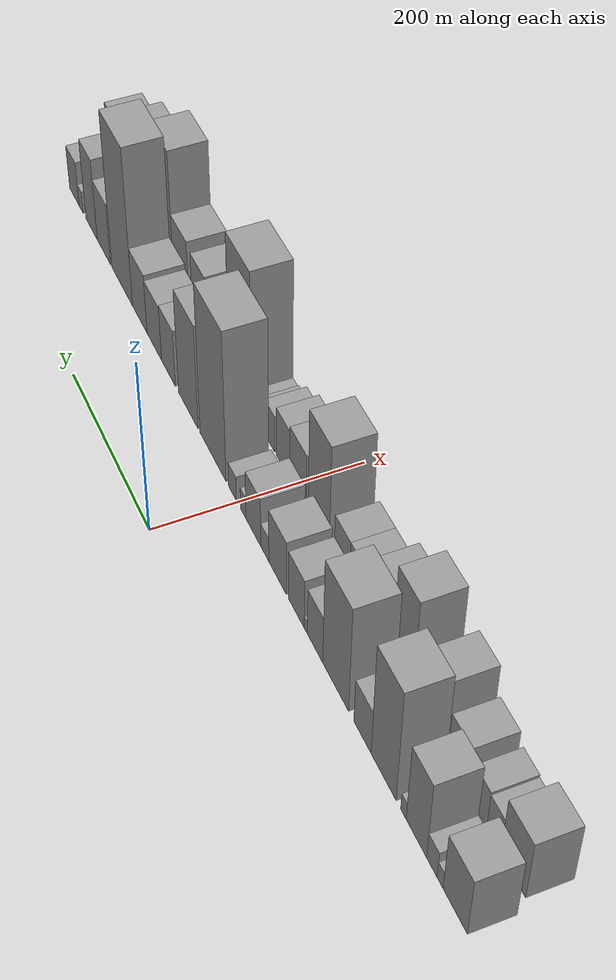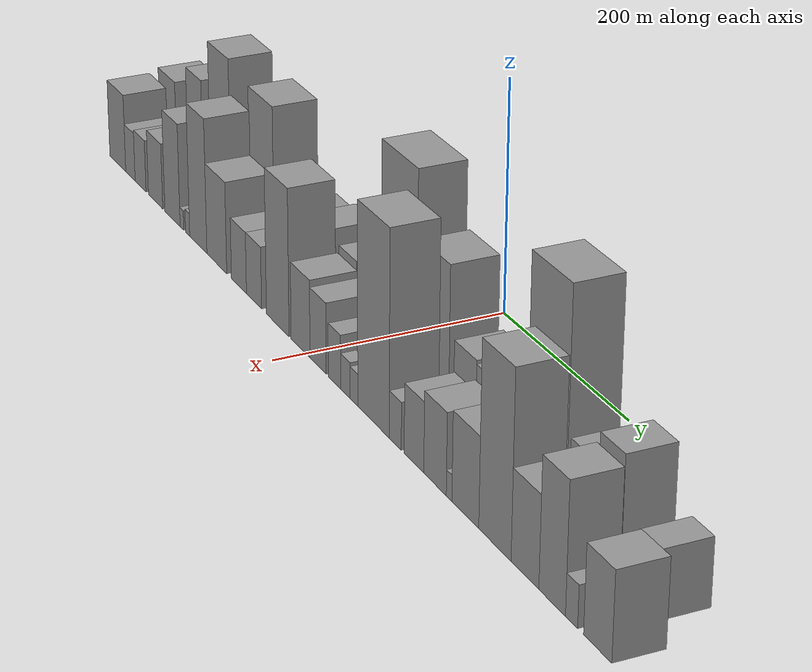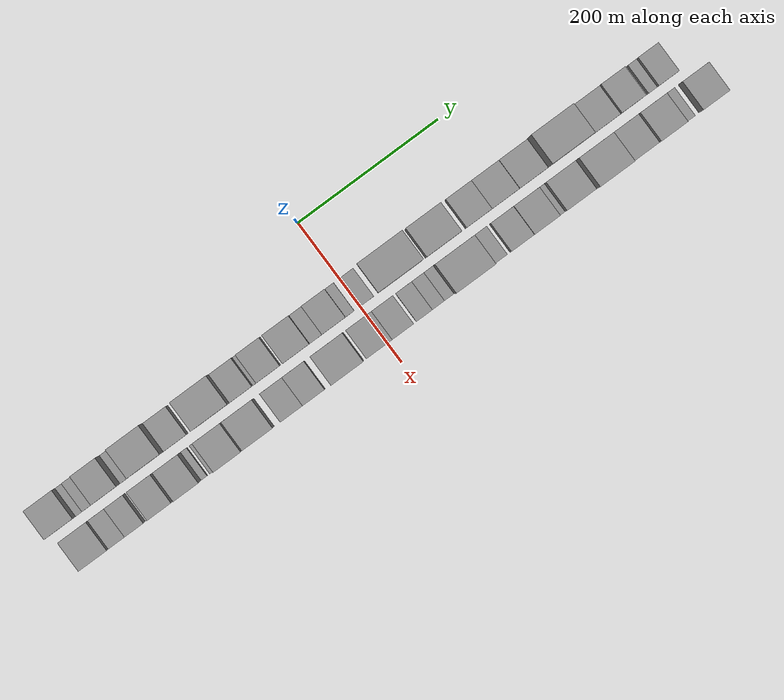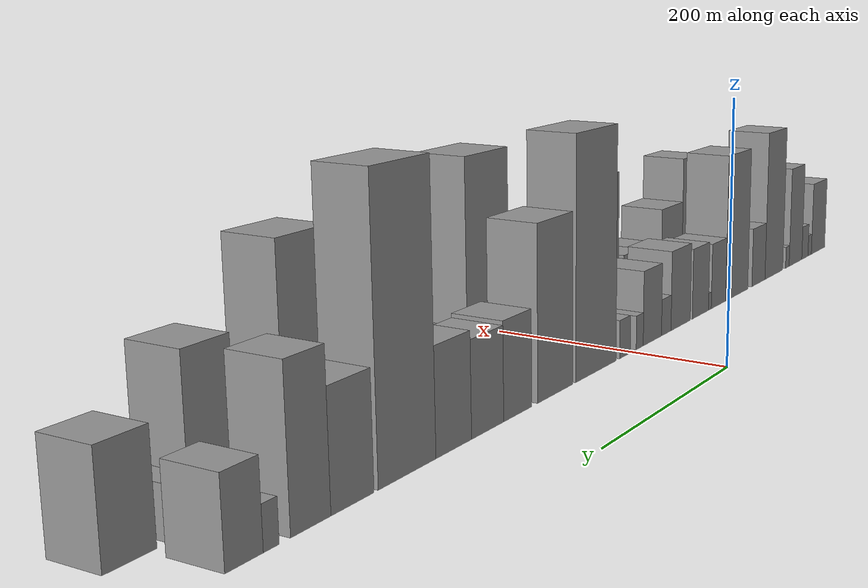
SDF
<sdf version="1.6">
 <world name="default">
  <scene>
   <sky><clouds><speed>12</speed></clouds></sky>
   <ambient>0.4 0.4 0.4 1</ambient>
   <background>0.7 0.7 0.7 1</background>
   <shadows>1</shadows>
  </scene>
  <gravity>0 0 -9.8066</gravity>
  <magnetic_field>6e-06 2.3e-05 -4.2e-05</magnetic_field>
  <physics default="0" name="default_physics" type="ode">
   <ode>
    <solver>
     <type>quick</type>
     <iters>10</iters>
     <sor>1.0</sor>
     <use_dynamic_moi_rescaling>0</use_dynamic_moi_rescaling>
    </solver>
    <constraints>
     <cfm>0</cfm>
     <erp>0.2</erp>
     <contact_max_correcting_vel>100</contact_max_correcting_vel>
     <contact_surface_layer>0.001</contact_surface_layer>
    </constraints>
   </ode>
   <max_step_size>0.004</max_step_size>
   <real_time_factor>1</real_time_factor>
   <real_time_update_rate>250</real_time_update_rate>
  </physics>
  <light name="sun" type="directional">
   <pose>0 0 10 0 0 0</pose>
   <diffuse>0.8 0.8 0.8 1</diffuse>
   <specular>0.2 0.2 0.2 1</specular>
   <attenuation>
    <range>1000</range>
    <constant>0.9</constant>
    <linear>0.01</linear>
    <quadratic>0.001</quadratic>
   </attenuation>
   <direction>-0.5 0.1 -0.9</direction>
  </light>
  <model name="building_1">
   <static>1</static>
   <pose>100.0000 -423.9543 0 0.000000 0.000000 0.000000</pose>
   <link name="link">
    <pose>0 0 36.00 0 0 0</pose>
    <collision name="collision"><geometry><box><size>40.0000 40.0915 72.0000</size></box></geometry></collision>
    <visual name="visual">
     <cast_shadows>0</cast_shadows>
     <geometry><box><size>40.0000 40.0915 72.0000</size></box></geometry>
     <material>
      <script>
       <uri>model://grey_wall/materials/scripts</uri>
       <uri>model://grey_wall/materials/textures</uri>
       <name>vrc/grey_wall</name>
      </script>
     </material>
    </visual>
   </link>
  </model>
  <model name="building_2">
   <static>1</static>
   <pose>100.0000 -398.9408 0 0.000000 0.000000 0.000000</pose>
   <link name="link">
    <pose>0 0 10.50 0 0 0</pose>
    <collision name="collision"><geometry><box><size>40.0000 9.9356 21.0000</size></box></geometry></collision>
    <visual name="visual">
     <cast_shadows>0</cast_shadows>
     <geometry><box><size>40.0000 9.9356 21.0000</size></box></geometry>
     <material>
      <script>
       <uri>model://grey_wall/materials/scripts</uri>
       <uri>model://grey_wall/materials/textures</uri>
       <name>vrc/grey_wall</name>
      </script>
     </material>
    </visual>
   </link>
  </model>
  <model name="building_3">
   <static>1</static>
   <pose>100.0000 -385.1094 0 0.000000 0.000000 0.000000</pose>
   <link name="link">
    <pose>0 0 16.50 0 0 0</pose>
    <collision name="collision"><geometry><box><size>40.0000 17.7272 33.0000</size></box></geometry></collision>
    <visual name="visual">
     <cast_shadows>0</cast_shadows>
     <geometry><box><size>40.0000 17.7272 33.0000</size></box></geometry>
     <material>
      <script>
       <uri>model://grey_wall/materials/scripts</uri>
       <uri>model://grey_wall/materials/textures</uri>
       <name>vrc/grey_wall</name>
      </script>
     </material>
    </visual>
   </link>
  </model>
  <model name="building_4">
   <static>1</static>
   <pose>100.0000 -358.5378 0 0.000000 0.000000 0.000000</pose>
   <link name="link">
    <pose>0 0 48.00 0 0 0</pose>
    <collision name="collision"><geometry><box><size>40.0000 35.4161 96.0000</size></box></geometry></collision>
    <visual name="visual">
     <cast_shadows>0</cast_shadows>
     <geometry><box><size>40.0000 35.4161 96.0000</size></box></geometry>
     <material>
      <script>
       <uri>model://grey_wall/materials/scripts</uri>
       <uri>model://grey_wall/materials/textures</uri>
       <name>vrc/grey_wall</name>
      </script>
     </material>
    </visual>
   </link>
  </model>
  <model name="building_5">
   <static>1</static>
   <pose>100.0000 -335.9532 0 0.000000 0.000000 0.000000</pose>
   <link name="link">
    <pose>0 0 10.50 0 0 0</pose>
    <collision name="collision"><geometry><box><size>40.0000 9.7530 21.0000</size></box></geometry></collision>
    <visual name="visual">
     <cast_shadows>0</cast_shadows>
     <geometry><box><size>40.0000 9.7530 21.0000</size></box></geometry>
     <material>
      <script>
       <uri>model://grey_wall/materials/scripts</uri>
       <uri>model://grey_wall/materials/textures</uri>
       <name>vrc/grey_wall</name>
      </script>
     </material>
    </visual>
   </link>
  </model>
  <model name="building_6">
   <static>1</static>
   <pose>100.0000 -300.1363 0 0.000000 0.000000 0.000000</pose>
   <link name="link">
    <pose>0 0 69.00 0 0 0</pose>
    <collision name="collision"><geometry><box><size>40.0000 45.8809 138.0000</size></box></geometry></collision>
    <visual name="visual">
     <cast_shadows>0</cast_shadows>
     <geometry><box><size>40.0000 45.8809 138.0000</size></box></geometry>
     <material>
      <script>
       <uri>model://grey_wall/materials/scripts</uri>
       <uri>model://grey_wall/materials/textures</uri>
       <name>vrc/grey_wall</name>
      </script>
     </material>
    </visual>
   </link>
  </model>
  <model name="building_7">
   <static>1</static>
   <pose>100.0000 -261.0096 0 0.000000 0.000000 0.000000</pose>
   <link name="link">
    <pose>0 0 27.00 0 0 0</pose>
    <collision name="collision"><geometry><box><size>40.0000 32.3724 54.0000</size></box></geometry></collision>
    <visual name="visual">
     <cast_shadows>0</cast_shadows>
     <geometry><box><size>40.0000 32.3724 54.0000</size></box></geometry>
     <material>
      <script>
       <uri>model://grey_wall/materials/scripts</uri>
       <uri>model://grey_wall/materials/textures</uri>
       <name>vrc/grey_wall</name>
      </script>
     </material>
    </visual>
   </link>
  </model>
  <model name="building_8">
   <static>1</static>
   <pose>100.0000 -209.3843 0 0.000000 0.000000 0.000000</pose>
   <link name="link">
    <pose>0 0 64.50 0 0 0</pose>
    <collision name="collision"><geometry><box><size>40.0000 50.8782 129.0000</size></box></geometry></collision>
    <visual name="visual">
     <cast_shadows>0</cast_shadows>
     <geometry><box><size>40.0000 50.8782 129.0000</size></box></geometry>
     <material>
      <script>
       <uri>model://grey_wall/materials/scripts</uri>
       <uri>model://grey_wall/materials/textures</uri>
       <name>vrc/grey_wall</name>
      </script>
     </material>
    </visual>
   </link>
  </model>
  <model name="building_9">
   <static>1</static>
   <pose>100.0000 -168.1721 0 0.000000 0.000000 0.000000</pose>
   <link name="link">
    <pose>0 0 28.50 0 0 0</pose>
    <collision name="collision"><geometry><box><size>40.0000 31.5462 57.0000</size></box></geometry></collision>
    <visual name="visual">
     <cast_shadows>0</cast_shadows>
     <geometry><box><size>40.0000 31.5462 57.0000</size></box></geometry>
     <material>
      <script>
       <uri>model://grey_wall/materials/scripts</uri>
       <uri>model://grey_wall/materials/textures</uri>
       <name>vrc/grey_wall</name>
      </script>
     </material>
    </visual>
   </link>
  </model>
  <model name="building_10">
   <static>1</static>
   <pose>100.0000 -149.3820 0 0.000000 0.000000 0.000000</pose>
   <link name="link">
    <pose>0 0 7.50 0 0 0</pose>
    <collision name="collision"><geometry><box><size>40.0000 6.0340 15.0000</size></box></geometry></collision>
    <visual name="visual">
     <cast_shadows>0</cast_shadows>
     <geometry><box><size>40.0000 6.0340 15.0000</size></box></geometry>
     <material>
      <script>
       <uri>model://grey_wall/materials/scripts</uri>
       <uri>model://grey_wall/materials/textures</uri>
       <name>vrc/grey_wall</name>
      </script>
     </material>
    </visual>
   </link>
  </model>
  <model name="building_11">
   <static>1</static>
   <pose>100.0000 -129.6359 0 0.000000 0.000000 0.000000</pose>
   <link name="link">
    <pose>0 0 30.00 0 0 0</pose>
    <collision name="collision"><geometry><box><size>40.0000 33.4581 60.0000</size></box></geometry></collision>
    <visual name="visual">
     <cast_shadows>0</cast_shadows>
     <geometry><box><size>40.0000 33.4581 60.0000</size></box></geometry>
     <material>
      <script>
       <uri>model://grey_wall/materials/scripts</uri>
       <uri>model://grey_wall/materials/textures</uri>
       <name>vrc/grey_wall</name>
      </script>
     </material>
    </visual>
   </link>
  </model>
  <model name="building_12">
   <static>1</static>
   <pose>100.0000 -90.0533 0 0.000000 0.000000 0.000000</pose>
   <link name="link">
    <pose>0 0 33.00 0 0 0</pose>
    <collision name="collision"><geometry><box><size>40.0000 37.7072 66.0000</size></box></geometry></collision>
    <visual name="visual">
     <cast_shadows>0</cast_shadows>
     <geometry><box><size>40.0000 37.7072 66.0000</size></box></geometry>
     <material>
      <script>
       <uri>model://grey_wall/materials/scripts</uri>
       <uri>model://grey_wall/materials/textures</uri>
       <name>vrc/grey_wall</name>
      </script>
     </material>
    </visual>
   </link>
  </model>
  <model name="building_13">
   <static>1</static>
   <pose>100.0000 -62.3040 0 0.000000 0.000000 0.000000</pose>
   <link name="link">
    <pose>0 0 15.00 0 0 0</pose>
    <collision name="collision"><geometry><box><size>40.0000 17.7913 30.0000</size></box></geometry></collision>
    <visual name="visual">
     <cast_shadows>0</cast_shadows>
     <geometry><box><size>40.0000 17.7913 30.0000</size></box></geometry>
     <material>
      <script>
       <uri>model://grey_wall/materials/scripts</uri>
       <uri>model://grey_wall/materials/textures</uri>
       <name>vrc/grey_wall</name>
      </script>
     </material>
    </visual>
   </link>
  </model>
  <model name="building_14">
   <static>1</static>
   <pose>100.0000 -36.8369 0 0.000000 0.000000 0.000000</pose>
   <link name="link">
    <pose>0 0 30.00 0 0 0</pose>
    <collision name="collision"><geometry><box><size>40.0000 33.1428 60.0000</size></box></geometry></collision>
    <visual name="visual">
     <cast_shadows>0</cast_shadows>
     <geometry><box><size>40.0000 33.1428 60.0000</size></box></geometry>
     <material>
      <script>
       <uri>model://grey_wall/materials/scripts</uri>
       <uri>model://grey_wall/materials/textures</uri>
       <name>vrc/grey_wall</name>
      </script>
     </material>
    </visual>
   </link>
  </model>
  <model name="building_15">
   <static>1</static>
   <pose>100.0000 -14.0958 0 0.000000 0.000000 0.000000</pose>
   <link name="link">
    <pose>0 0 13.50 0 0 0</pose>
    <collision name="collision"><geometry><box><size>40.0000 12.3396 27.0000</size></box></geometry></collision>
    <visual name="visual">
     <cast_shadows>0</cast_shadows>
     <geometry><box><size>40.0000 12.3396 27.0000</size></box></geometry>
     <material>
      <script>
       <uri>model://grey_wall/materials/scripts</uri>
       <uri>model://grey_wall/materials/textures</uri>
       <name>vrc/grey_wall</name>
      </script>
     </material>
    </visual>
   </link>
  </model>
  <model name="building_16">
   <static>1</static>
   <pose>100.0000 11.0165 0 0.000000 0.000000 0.000000</pose>
   <link name="link">
    <pose>0 0 15.00 0 0 0</pose>
    <collision name="collision"><geometry><box><size>40.0000 17.8850 30.0000</size></box></geometry></collision>
    <visual name="visual">
     <cast_shadows>0</cast_shadows>
     <geometry><box><size>40.0000 17.8850 30.0000</size></box></geometry>
     <material>
      <script>
       <uri>model://grey_wall/materials/scripts</uri>
       <uri>model://grey_wall/materials/textures</uri>
       <name>vrc/grey_wall</name>
      </script>
     </material>
    </visual>
   </link>
  </model>
  <model name="building_17">
   <static>1</static>
   <pose>100.0000 57.2775 0 0.000000 0.000000 0.000000</pose>
   <link name="link">
    <pose>0 0 90.00 0 0 0</pose>
    <collision name="collision"><geometry><box><size>40.0000 62.6371 180.0000</size></box></geometry></collision>
    <visual name="visual">
     <cast_shadows>0</cast_shadows>
     <geometry><box><size>40.0000 62.6371 180.0000</size></box></geometry>
     <material>
      <script>
       <uri>model://grey_wall/materials/scripts</uri>
       <uri>model://grey_wall/materials/textures</uri>
       <name>vrc/grey_wall</name>
      </script>
     </material>
    </visual>
   </link>
  </model>
  <model name="building_18">
   <static>1</static>
   <pose>100.0000 118.0699 0 0.000000 0.000000 0.000000</pose>
   <link name="link">
    <pose>0 0 63.00 0 0 0</pose>
    <collision name="collision"><geometry><box><size>40.0000 48.9476 126.0000</size></box></geometry></collision>
    <visual name="visual">
     <cast_shadows>0</cast_shadows>
     <geometry><box><size>40.0000 48.9476 126.0000</size></box></geometry>
     <material>
      <script>
       <uri>model://grey_wall/materials/scripts</uri>
       <uri>model://grey_wall/materials/textures</uri>
       <name>vrc/grey_wall</name>
      </script>
     </material>
    </visual>
   </link>
  </model>
  <model name="building_19">
   <static>1</static>
   <pose>100.0000 168.6191 0 0.000000 0.000000 0.000000</pose>
   <link name="link">
    <pose>0 0 34.50 0 0 0</pose>
    <collision name="collision"><geometry><box><size>40.0000 36.1507 69.0000</size></box></geometry></collision>
    <visual name="visual">
     <cast_shadows>0</cast_shadows>
     <geometry><box><size>40.0000 36.1507 69.0000</size></box></geometry>
     <material>
      <script>
       <uri>model://grey_wall/materials/scripts</uri>
       <uri>model://grey_wall/materials/textures</uri>
       <name>vrc/grey_wall</name>
      </script>
     </material>
    </visual>
   </link>
  </model>
  <model name="building_20">
   <static>1</static>
   <pose>100.0000 206.0624 0 0.000000 0.000000 0.000000</pose>
   <link name="link">
    <pose>0 0 33.00 0 0 0</pose>
    <collision name="collision"><geometry><box><size>40.0000 38.7359 66.0000</size></box></geometry></collision>
    <visual name="visual">
     <cast_shadows>0</cast_shadows>
     <geometry><box><size>40.0000 38.7359 66.0000</size></box></geometry>
     <material>
      <script>
       <uri>model://grey_wall/materials/scripts</uri>
       <uri>model://grey_wall/materials/textures</uri>
       <name>vrc/grey_wall</name>
      </script>
     </material>
    </visual>
   </link>
  </model>
  <model name="building_21">
   <static>1</static>
   <pose>100.0000 245.3447 0 0.000000 0.000000 0.000000</pose>
   <link name="link">
    <pose>0 0 36.00 0 0 0</pose>
    <collision name="collision"><geometry><box><size>40.0000 39.8286 72.0000</size></box></geometry></collision>
    <visual name="visual">
     <cast_shadows>0</cast_shadows>
     <geometry><box><size>40.0000 39.8286 72.0000</size></box></geometry>
     <material>
      <script>
       <uri>model://grey_wall/materials/scripts</uri>
       <uri>model://grey_wall/materials/textures</uri>
       <name>vrc/grey_wall</name>
      </script>
     </material>
    </visual>
   </link>
  </model>
  <model name="building_22">
   <static>1</static>
   <pose>100.0000 294.5510 0 0.000000 0.000000 0.000000</pose>
   <link name="link">
    <pose>0 0 94.50 0 0 0</pose>
    <collision name="collision"><geometry><box><size>40.0000 58.5840 189.0000</size></box></geometry></collision>
    <visual name="visual">
     <cast_shadows>0</cast_shadows>
     <geometry><box><size>40.0000 58.5840 189.0000</size></box></geometry>
     <material>
      <script>
       <uri>model://grey_wall/materials/scripts</uri>
       <uri>model://grey_wall/materials/textures</uri>
       <name>vrc/grey_wall</name>
      </script>
     </material>
    </visual>
   </link>
  </model>
  <model name="building_23">
   <static>1</static>
   <pose>100.0000 347.4160 0 0.000000 0.000000 0.000000</pose>
   <link name="link">
    <pose>0 0 37.50 0 0 0</pose>
    <collision name="collision"><geometry><box><size>40.0000 39.1462 75.0000</size></box></geometry></collision>
    <visual name="visual">
     <cast_shadows>0</cast_shadows>
     <geometry><box><size>40.0000 39.1462 75.0000</size></box></geometry>
     <material>
      <script>
       <uri>model://grey_wall/materials/scripts</uri>
       <uri>model://grey_wall/materials/textures</uri>
       <name>vrc/grey_wall</name>
      </script>
     </material>
    </visual>
   </link>
  </model>
  <model name="building_24">
   <static>1</static>
   <pose>100.0000 383.9747 0 0.000000 0.000000 0.000000</pose>
   <link name="link">
    <pose>0 0 49.50 0 0 0</pose>
    <collision name="collision"><geometry><box><size>40.0000 33.9710 99.0000</size></box></geometry></collision>
    <visual name="visual">
     <cast_shadows>0</cast_shadows>
     <geometry><box><size>40.0000 33.9710 99.0000</size></box></geometry>
     <material>
      <script>
       <uri>model://grey_wall/materials/scripts</uri>
       <uri>model://grey_wall/materials/textures</uri>
       <name>vrc/grey_wall</name>
      </script>
     </material>
    </visual>
   </link>
  </model>
  <model name="building_25">
   <static>1</static>
   <pose>100.0000 416.1803 0 0.000000 0.000000 0.000000</pose>
   <link name="link">
    <pose>0 0 13.50 0 0 0</pose>
    <collision name="collision"><geometry><box><size>40.0000 12.4402 27.0000</size></box></geometry></collision>
    <visual name="visual">
     <cast_shadows>0</cast_shadows>
     <geometry><box><size>40.0000 12.4402 27.0000</size></box></geometry>
     <material>
      <script>
       <uri>model://grey_wall/materials/scripts</uri>
       <uri>model://grey_wall/materials/textures</uri>
       <name>vrc/grey_wall</name>
      </script>
     </material>
    </visual>
   </link>
  </model>
  <model name="building_26">
   <static>1</static>
   <pose>100.0000 436.7910 0 0.000000 0.000000 0.000000</pose>
   <link name="link">
    <pose>0 0 27.00 0 0 0</pose>
    <collision name="collision"><geometry><box><size>40.0000 28.7812 54.0000</size></box></geometry></collision>
    <visual name="visual">
     <cast_shadows>0</cast_shadows>
     <geometry><box><size>40.0000 28.7812 54.0000</size></box></geometry>
     <material>
      <script>
       <uri>model://grey_wall/materials/scripts</uri>
       <uri>model://grey_wall/materials/textures</uri>
       <name>vrc/grey_wall</name>
      </script>
     </material>
    </visual>
   </link>
  </model>
  <model name="building_27">
   <static>1</static>
   <pose>152.0000 -414.0474 0 0.000000 0.000000 0.000000</pose>
   <link name="link">
    <pose>0 0 36.00 0 0 0</pose>
    <collision name="collision"><geometry><box><size>40.0000 39.9053 72.0000</size></box></geometry></collision>
    <visual name="visual">
     <cast_shadows>0</cast_shadows>
     <geometry><box><size>40.0000 39.9053 72.0000</size></box></geometry>
     <material>
      <script>
       <uri>model://grey_wall/materials/scripts</uri>
       <uri>model://grey_wall/materials/textures</uri>
       <name>vrc/grey_wall</name>
      </script>
     </material>
    </visual>
   </link>
  </model>
  <model name="building_28">
   <static>1</static>
   <pose>152.0000 -382.4785 0 0.000000 0.000000 0.000000</pose>
   <link name="link">
    <pose>0 0 22.50 0 0 0</pose>
    <collision name="collision"><geometry><box><size>40.0000 23.2325 45.0000</size></box></geometry></collision>
    <visual name="visual">
     <cast_shadows>0</cast_shadows>
     <geometry><box><size>40.0000 23.2325 45.0000</size></box></geometry>
     <material>
      <script>
       <uri>model://grey_wall/materials/scripts</uri>
       <uri>model://grey_wall/materials/textures</uri>
       <name>vrc/grey_wall</name>
      </script>
     </material>
    </visual>
   </link>
  </model>
  <model name="building_29">
   <static>1</static>
   <pose>152.0000 -357.6204 0 0.000000 0.000000 0.000000</pose>
   <link name="link">
    <pose>0 0 24.00 0 0 0</pose>
    <collision name="collision"><geometry><box><size>40.0000 26.4836 48.0000</size></box></geometry></collision>
    <visual name="visual">
     <cast_shadows>0</cast_shadows>
     <geometry><box><size>40.0000 26.4836 48.0000</size></box></geometry>
     <material>
      <script>
       <uri>model://grey_wall/materials/scripts</uri>
       <uri>model://grey_wall/materials/textures</uri>
       <name>vrc/grey_wall</name>
      </script>
     </material>
    </visual>
   </link>
  </model>
  <model name="building_30">
   <static>1</static>
   <pose>152.0000 -321.4237 0 0.000000 0.000000 0.000000</pose>
   <link name="link">
    <pose>0 0 30.00 0 0 0</pose>
    <collision name="collision"><geometry><box><size>40.0000 33.9099 60.0000</size></box></geometry></collision>
    <visual name="visual">
     <cast_shadows>0</cast_shadows>
     <geometry><box><size>40.0000 33.9099 60.0000</size></box></geometry>
     <material>
      <script>
       <uri>model://grey_wall/materials/scripts</uri>
       <uri>model://grey_wall/materials/textures</uri>
       <name>vrc/grey_wall</name>
      </script>
     </material>
    </visual>
   </link>
  </model>
  <model name="building_31">
   <static>1</static>
   <pose>152.0000 -281.8062 0 0.000000 0.000000 0.000000</pose>
   <link name="link">
    <pose>0 0 46.50 0 0 0</pose>
    <collision name="collision"><geometry><box><size>40.0000 35.3252 93.0000</size></box></geometry></collision>
    <visual name="visual">
     <cast_shadows>0</cast_shadows>
     <geometry><box><size>40.0000 35.3252 93.0000</size></box></geometry>
     <material>
      <script>
       <uri>model://grey_wall/materials/scripts</uri>
       <uri>model://grey_wall/materials/textures</uri>
       <name>vrc/grey_wall</name>
      </script>
     </material>
    </visual>
   </link>
  </model>
  <model name="building_32">
   <static>1</static>
   <pose>152.0000 -259.8811 0 0.000000 0.000000 0.000000</pose>
   <link name="link">
    <pose>0 0 9.00 0 0 0</pose>
    <collision name="collision"><geometry><box><size>40.0000 8.5250 18.0000</size></box></geometry></collision>
    <visual name="visual">
     <cast_shadows>0</cast_shadows>
     <geometry><box><size>40.0000 8.5250 18.0000</size></box></geometry>
     <material>
      <script>
       <uri>model://grey_wall/materials/scripts</uri>
       <uri>model://grey_wall/materials/textures</uri>
       <name>vrc/grey_wall</name>
      </script>
     </material>
    </visual>
   </link>
  </model>
  <model name="building_33">
   <static>1</static>
   <pose>152.0000 -246.9078 0 0.000000 0.000000 0.000000</pose>
   <link name="link">
    <pose>0 0 10.50 0 0 0</pose>
    <collision name="collision"><geometry><box><size>40.0000 9.4216 21.0000</size></box></geometry></collision>
    <visual name="visual">
     <cast_shadows>0</cast_shadows>
     <geometry><box><size>40.0000 9.4216 21.0000</size></box></geometry>
     <material>
      <script>
       <uri>model://grey_wall/materials/scripts</uri>
       <uri>model://grey_wall/materials/textures</uri>
       <name>vrc/grey_wall</name>
      </script>
     </material>
    </visual>
   </link>
  </model>
  <model name="building_34">
   <static>1</static>
   <pose>152.0000 -222.9774 0 0.000000 0.000000 0.000000</pose>
   <link name="link">
    <pose>0 0 60.00 0 0 0</pose>
    <collision name="collision"><geometry><box><size>40.0000 38.4392 120.0000</size></box></geometry></collision>
    <visual name="visual">
     <cast_shadows>0</cast_shadows>
     <geometry><box><size>40.0000 38.4392 120.0000</size></box></geometry>
     <material>
      <script>
       <uri>model://grey_wall/materials/scripts</uri>
       <uri>model://grey_wall/materials/textures</uri>
       <name>vrc/grey_wall</name>
      </script>
     </material>
    </visual>
   </link>
  </model>
  <model name="building_35">
   <static>1</static>
   <pose>152.0000 -182.2010 0 0.000000 0.000000 0.000000</pose>
   <link name="link">
    <pose>0 0 40.50 0 0 0</pose>
    <collision name="collision"><geometry><box><size>40.0000 43.1135 81.0000</size></box></geometry></collision>
    <visual name="visual">
     <cast_shadows>0</cast_shadows>
     <geometry><box><size>40.0000 43.1135 81.0000</size></box></geometry>
     <material>
      <script>
       <uri>model://grey_wall/materials/scripts</uri>
       <uri>model://grey_wall/materials/textures</uri>
       <name>vrc/grey_wall</name>
      </script>
     </material>
    </visual>
   </link>
  </model>
  <model name="building_36">
   <static>1</static>
   <pose>152.0000 -134.8859 0 0.000000 0.000000 0.000000</pose>
   <link name="link">
    <pose>0 0 27.00 0 0 0</pose>
    <collision name="collision"><geometry><box><size>40.0000 31.5166 54.0000</size></box></geometry></collision>
    <visual name="visual">
     <cast_shadows>0</cast_shadows>
     <geometry><box><size>40.0000 31.5166 54.0000</size></box></geometry>
     <material>
      <script>
       <uri>model://grey_wall/materials/scripts</uri>
       <uri>model://grey_wall/materials/textures</uri>
       <name>vrc/grey_wall</name>
      </script>
     </material>
    </visual>
   </link>
  </model>
  <model name="building_37">
   <static>1</static>
   <pose>152.0000 -103.5730 0 0.000000 0.000000 0.000000</pose>
   <link name="link">
    <pose>0 0 27.00 0 0 0</pose>
    <collision name="collision"><geometry><box><size>40.0000 31.1092 54.0000</size></box></geometry></collision>
    <visual name="visual">
     <cast_shadows>0</cast_shadows>
     <geometry><box><size>40.0000 31.1092 54.0000</size></box></geometry>
     <material>
      <script>
       <uri>model://grey_wall/materials/scripts</uri>
       <uri>model://grey_wall/materials/textures</uri>
       <name>vrc/grey_wall</name>
      </script>
     </material>
    </visual>
   </link>
  </model>
  <model name="building_38">
   <static>1</static>
   <pose>152.0000 -55.4972 0 0.000000 0.000000 0.000000</pose>
   <link name="link">
    <pose>0 0 63.00 0 0 0</pose>
    <collision name="collision"><geometry><box><size>40.0000 45.0423 126.0000</size></box></geometry></collision>
    <visual name="visual">
     <cast_shadows>0</cast_shadows>
     <geometry><box><size>40.0000 45.0423 126.0000</size></box></geometry>
     <material>
      <script>
       <uri>model://grey_wall/materials/scripts</uri>
       <uri>model://grey_wall/materials/textures</uri>
       <name>vrc/grey_wall</name>
      </script>
     </material>
    </visual>
   </link>
  </model>
  <model name="building_39">
   <static>1</static>
   <pose>152.0000 -10.7792 0 0.000000 0.000000 0.000000</pose>
   <link name="link">
    <pose>0 0 33.00 0 0 0</pose>
    <collision name="collision"><geometry><box><size>40.0000 36.3937 66.0000</size></box></geometry></collision>
    <visual name="visual">
     <cast_shadows>0</cast_shadows>
     <geometry><box><size>40.0000 36.3937 66.0000</size></box></geometry>
     <material>
      <script>
       <uri>model://grey_wall/materials/scripts</uri>
       <uri>model://grey_wall/materials/textures</uri>
       <name>vrc/grey_wall</name>
      </script>
     </material>
    </visual>
   </link>
  </model>
  <model name="building_40">
   <static>1</static>
   <pose>152.0000 22.5608 0 0.000000 0.000000 0.000000</pose>
   <link name="link">
    <pose>0 0 30.00 0 0 0</pose>
    <collision name="collision"><geometry><box><size>40.0000 30.2864 60.0000</size></box></geometry></collision>
    <visual name="visual">
     <cast_shadows>0</cast_shadows>
     <geometry><box><size>40.0000 30.2864 60.0000</size></box></geometry>
     <material>
      <script>
       <uri>model://grey_wall/materials/scripts</uri>
       <uri>model://grey_wall/materials/textures</uri>
       <name>vrc/grey_wall</name>
      </script>
     </material>
    </visual>
   </link>
  </model>
  <model name="building_41">
   <static>1</static>
   <pose>152.0000 53.0516 0 0.000000 0.000000 0.000000</pose>
   <link name="link">
    <pose>0 0 22.50 0 0 0</pose>
    <collision name="collision"><geometry><box><size>40.0000 22.6952 45.0000</size></box></geometry></collision>
    <visual name="visual">
     <cast_shadows>0</cast_shadows>
     <geometry><box><size>40.0000 22.6952 45.0000</size></box></geometry>
     <material>
      <script>
       <uri>model://grey_wall/materials/scripts</uri>
       <uri>model://grey_wall/materials/textures</uri>
       <name>vrc/grey_wall</name>
      </script>
     </material>
    </visual>
   </link>
  </model>
  <model name="building_42">
   <static>1</static>
   <pose>152.0000 73.1157 0 0.000000 0.000000 0.000000</pose>
   <link name="link">
    <pose>0 0 15.00 0 0 0</pose>
    <collision name="collision"><geometry><box><size>40.0000 17.4329 30.0000</size></box></geometry></collision>
    <visual name="visual">
     <cast_shadows>0</cast_shadows>
     <geometry><box><size>40.0000 17.4329 30.0000</size></box></geometry>
     <material>
      <script>
       <uri>model://grey_wall/materials/scripts</uri>
       <uri>model://grey_wall/materials/textures</uri>
       <name>vrc/grey_wall</name>
      </script>
     </material>
    </visual>
   </link>
  </model>
  <model name="building_43">
   <static>1</static>
   <pose>152.0000 88.5597 0 0.000000 0.000000 0.000000</pose>
   <link name="link">
    <pose>0 0 13.50 0 0 0</pose>
    <collision name="collision"><geometry><box><size>40.0000 13.4551 27.0000</size></box></geometry></collision>
    <visual name="visual">
     <cast_shadows>0</cast_shadows>
     <geometry><box><size>40.0000 13.4551 27.0000</size></box></geometry>
     <material>
      <script>
       <uri>model://grey_wall/materials/scripts</uri>
       <uri>model://grey_wall/materials/textures</uri>
       <name>vrc/grey_wall</name>
      </script>
     </material>
    </visual>
   </link>
  </model>
  <model name="building_44">
   <static>1</static>
   <pose>152.0000 122.7590 0 0.000000 0.000000 0.000000</pose>
   <link name="link">
    <pose>0 0 84.00 0 0 0</pose>
    <collision name="collision"><geometry><box><size>40.0000 54.9436 168.0000</size></box></geometry></collision>
    <visual name="visual">
     <cast_shadows>0</cast_shadows>
     <geometry><box><size>40.0000 54.9436 168.0000</size></box></geometry>
     <material>
      <script>
       <uri>model://grey_wall/materials/scripts</uri>
       <uri>model://grey_wall/materials/textures</uri>
       <name>vrc/grey_wall</name>
      </script>
     </material>
    </visual>
   </link>
  </model>
  <model name="building_45">
   <static>1</static>
   <pose>152.0000 160.4700 0 0.000000 0.000000 0.000000</pose>
   <link name="link">
    <pose>0 0 19.50 0 0 0</pose>
    <collision name="collision"><geometry><box><size>40.0000 20.4783 39.0000</size></box></geometry></collision>
    <visual name="visual">
     <cast_shadows>0</cast_shadows>
     <geometry><box><size>40.0000 20.4783 39.0000</size></box></geometry>
     <material>
      <script>
       <uri>model://grey_wall/materials/scripts</uri>
       <uri>model://grey_wall/materials/textures</uri>
       <name>vrc/grey_wall</name>
      </script>
     </material>
    </visual>
   </link>
  </model>
  <model name="building_46">
   <static>1</static>
   <pose>152.0000 191.9492 0 0.000000 0.000000 0.000000</pose>
   <link name="link">
    <pose>0 0 28.50 0 0 0</pose>
    <collision name="collision"><geometry><box><size>40.0000 32.4802 57.0000</size></box></geometry></collision>
    <visual name="visual">
     <cast_shadows>0</cast_shadows>
     <geometry><box><size>40.0000 32.4802 57.0000</size></box></geometry>
     <material>
      <script>
       <uri>model://grey_wall/materials/scripts</uri>
       <uri>model://grey_wall/materials/textures</uri>
       <name>vrc/grey_wall</name>
      </script>
     </material>
    </visual>
   </link>
  </model>
  <model name="building_47">
   <static>1</static>
   <pose>152.0000 226.2958 0 0.000000 0.000000 0.000000</pose>
   <link name="link">
    <pose>0 0 33.00 0 0 0</pose>
    <collision name="collision"><geometry><box><size>40.0000 36.2129 66.0000</size></box></geometry></collision>
    <visual name="visual">
     <cast_shadows>0</cast_shadows>
     <geometry><box><size>40.0000 36.2129 66.0000</size></box></geometry>
     <material>
      <script>
       <uri>model://grey_wall/materials/scripts</uri>
       <uri>model://grey_wall/materials/textures</uri>
       <name>vrc/grey_wall</name>
      </script>
     </material>
    </visual>
   </link>
  </model>
  <model name="building_48">
   <static>1</static>
   <pose>152.0000 248.8815 0 0.000000 0.000000 0.000000</pose>
   <link name="link">
    <pose>0 0 10.50 0 0 0</pose>
    <collision name="collision"><geometry><box><size>40.0000 8.9586 21.0000</size></box></geometry></collision>
    <visual name="visual">
     <cast_shadows>0</cast_shadows>
     <geometry><box><size>40.0000 8.9586 21.0000</size></box></geometry>
     <material>
      <script>
       <uri>model://grey_wall/materials/scripts</uri>
       <uri>model://grey_wall/materials/textures</uri>
       <name>vrc/grey_wall</name>
      </script>
     </material>
    </visual>
   </link>
  </model>
  <model name="building_49">
   <static>1</static>
   <pose>152.0000 274.1942 0 0.000000 0.000000 0.000000</pose>
   <link name="link">
    <pose>0 0 36.00 0 0 0</pose>
    <collision name="collision"><geometry><box><size>40.0000 41.6667 72.0000</size></box></geometry></collision>
    <visual name="visual">
     <cast_shadows>0</cast_shadows>
     <geometry><box><size>40.0000 41.6667 72.0000</size></box></geometry>
     <material>
      <script>
       <uri>model://grey_wall/materials/scripts</uri>
       <uri>model://grey_wall/materials/textures</uri>
       <name>vrc/grey_wall</name>
      </script>
     </material>
    </visual>
   </link>
  </model>
  <model name="building_50">
   <static>1</static>
   <pose>152.0000 319.2222 0 0.000000 0.000000 0.000000</pose>
   <link name="link">
    <pose>0 0 73.50 0 0 0</pose>
    <collision name="collision"><geometry><box><size>40.0000 48.3895 147.0000</size></box></geometry></collision>
    <visual name="visual">
     <cast_shadows>0</cast_shadows>
     <geometry><box><size>40.0000 48.3895 147.0000</size></box></geometry>
     <material>
      <script>
       <uri>model://grey_wall/materials/scripts</uri>
       <uri>model://grey_wall/materials/textures</uri>
       <name>vrc/grey_wall</name>
      </script>
     </material>
    </visual>
   </link>
  </model>
  <model name="building_51">
   <static>1</static>
   <pose>152.0000 363.4705 0 0.000000 0.000000 0.000000</pose>
   <link name="link">
    <pose>0 0 36.00 0 0 0</pose>
    <collision name="collision"><geometry><box><size>40.0000 40.1070 72.0000</size></box></geometry></collision>
    <visual name="visual">
     <cast_shadows>0</cast_shadows>
     <geometry><box><size>40.0000 40.1070 72.0000</size></box></geometry>
     <material>
      <script>
       <uri>model://grey_wall/materials/scripts</uri>
       <uri>model://grey_wall/materials/textures</uri>
       <name>vrc/grey_wall</name>
      </script>
     </material>
    </visual>
   </link>
  </model>
  <model name="building_52">
   <static>1</static>
   <pose>152.0000 402.1439 0 0.000000 0.000000 0.000000</pose>
   <link name="link">
    <pose>0 0 51.00 0 0 0</pose>
    <collision name="collision"><geometry><box><size>40.0000 37.2398 102.0000</size></box></geometry></collision>
    <visual name="visual">
     <cast_shadows>0</cast_shadows>
     <geometry><box><size>40.0000 37.2398 102.0000</size></box></geometry>
     <material>
      <script>
       <uri>model://grey_wall/materials/scripts</uri>
       <uri>model://grey_wall/materials/textures</uri>
       <name>vrc/grey_wall</name>
      </script>
     </material>
    </visual>
   </link>
  </model>
  <model name="building_53">
   <static>1</static>
   <pose>152.0000 429.0730 0 0.000000 0.000000 0.000000</pose>
   <link name="link">
    <pose>0 0 16.50 0 0 0</pose>
    <collision name="collision"><geometry><box><size>40.0000 16.6184 33.0000</size></box></geometry></collision>
    <visual name="visual">
     <cast_shadows>0</cast_shadows>
     <geometry><box><size>40.0000 16.6184 33.0000</size></box></geometry>
     <material>
      <script>
       <uri>model://grey_wall/materials/scripts</uri>
       <uri>model://grey_wall/materials/textures</uri>
       <name>vrc/grey_wall</name>
      </script>
     </material>
    </visual>
   </link>
  </model>
  <model name="building_54">
   <static>1</static>
   <pose>152.0000 464.1260 0 0.000000 0.000000 0.000000</pose>
   <link name="link">
    <pose>0 0 34.50 0 0 0</pose>
    <collision name="collision"><geometry><box><size>40.0000 37.4876 69.0000</size></box></geometry></collision>
    <visual name="visual">
     <cast_shadows>0</cast_shadows>
     <geometry><box><size>40.0000 37.4876 69.0000</size></box></geometry>
     <material>
      <script>
       <uri>model://grey_wall/materials/scripts</uri>
       <uri>model://grey_wall/materials/textures</uri>
       <name>vrc/grey_wall</name>
      </script>
     </material>
    </visual>
   </link>
  </model>
 </world>
</sdf>
